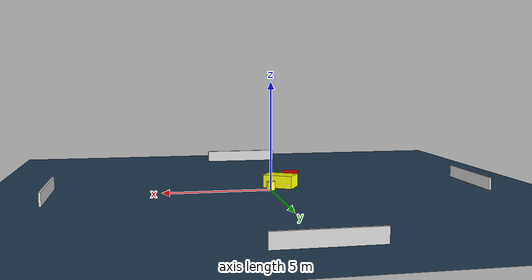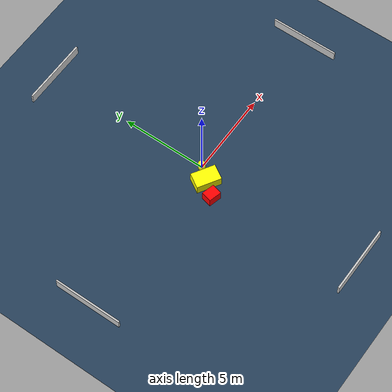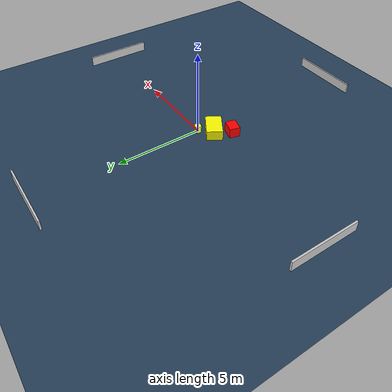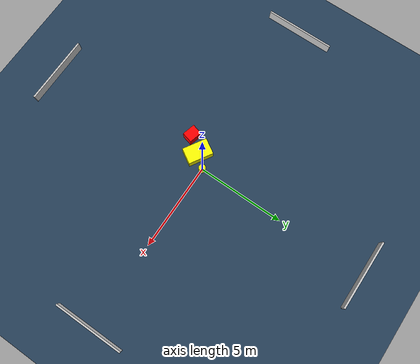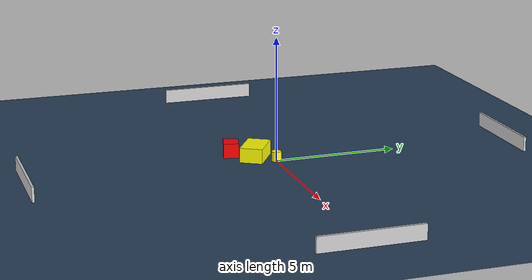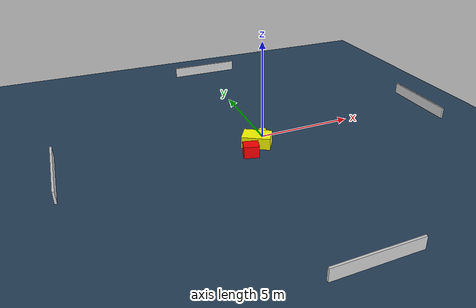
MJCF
<?xml version="1.0" ?>
<mujoco model="generated_environment">
  <option timestep="0.01" integrator="RK4" cone="elliptic"/>
  <default>
    <geom density="1"/>
  </default>
  <asset>
    <texture builtin="gradient" height="3072" name="skybox" rgb1="0.3 0.5 0.7" rgb2="0 0 0" type="skybox" width="512"/>
    <texture builtin="checker" height="300" name="groundplane" rgb1="0.2 0.3 0.4" rgb2="0.1 0.2 0.3" type="2d" width="300"/>
    <material name="groundplane" reflectance="0.2" texrepeat="5 5" texture="groundplane"/>
  </asset>
  <worldbody>
    <light dir="0 0 -1" directional="true" pos="0 0 1.5"/>
    <geom condim="3" friction="0.5 0.005 0.001" material="groundplane" name="floor" pos="0 0 0" size="0 0 0.05" type="plane"/>
    <body name="walls">
      <geom name="wall_1" condim="4" pos="-10.0 0.0 0.3" rgba="0.800000011920929 0.800000011920929 0.800000011920929 1.0" size="0.05 2.0 0.3" type="box"/>
      <geom name="wall_2" condim="4" pos="10.0 0.0 0.3" rgba="0.800000011920929 0.800000011920929 0.800000011920929 1.0" size="0.05 2.0 0.3" type="box"/>
      <geom name="wall_3" condim="4" pos="0.0 -10.0 0.3" rgba="0.800000011920929 0.800000011920929 0.800000011920929 1.0" size="2.0 0.05 0.3" type="box"/>
      <geom name="wall_4" condim="4" pos="0.0 10.0 0.3" rgba="0.800000011920929 0.800000011920929 0.800000011920929 1.0" size="2.0 0.05 0.3" type="box"/>
    </body>
    <body name="robot">
      <joint name="joint_x" type="slide" pos="0 0 0" axis="1 0 0"/>
      <joint name="joint_y" type="slide" pos="0 0 0" axis="0 1 0"/>
      <geom name="robot" type="cylinder" pos="0.0 0.0 0.2" size="0.2 0.2 0.0" mass="5.0" friction="1.0 0.005 0.0001" condim="4" rgba="1.0 1.0 0.0 1.0"/>
    </body>
    <body name="obstacle_1_movable">
      <geom name="obstacle_1_movable" condim="4" pos="-0.5888269766080632 -0.6976567030178406 0.3" euler="0 0 328.5948353520929" friction="0.0 0.005 0.001" rgba="1.0 1.0 0.0 1.0" size="0.7135316646761867 0.46139537460234115 0.3" type="box" mass="0.1"/>
      <joint type="free"/>
    </body>
    <body name="obstacle_2_static">
      <geom name="obstacle_2_static" condim="4" pos="-1.2412847822841027 -1.5225328359532653 0.3" euler="0 0 345.40719341622605" friction="0.0 0.005 0.001" rgba="1.0 0.0 0.0 1.0" size="0.37672987246450396 0.30869003050148414 0.3" type="box"/>
    </body>
  </worldbody>
  <actuator>
    <motor name="actuator_x" joint="joint_x" gear="1" ctrlrange="-1 1"/>
    <motor name="actuator_y" joint="joint_y" gear="1" ctrlrange="-1 1"/>
  </actuator>
</mujoco>
